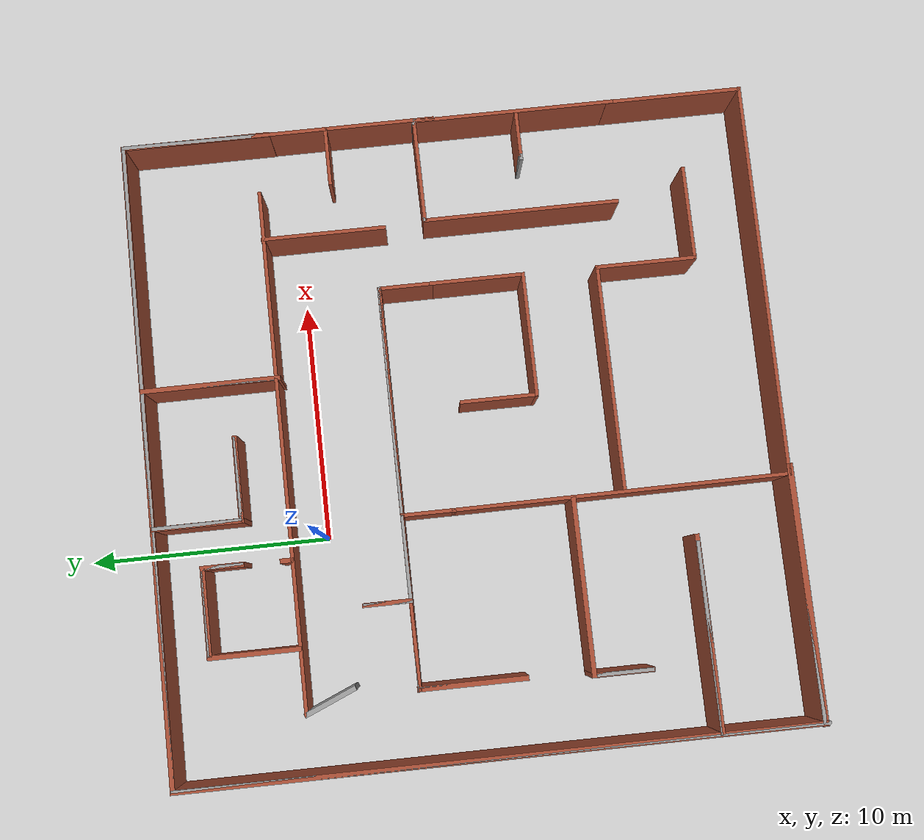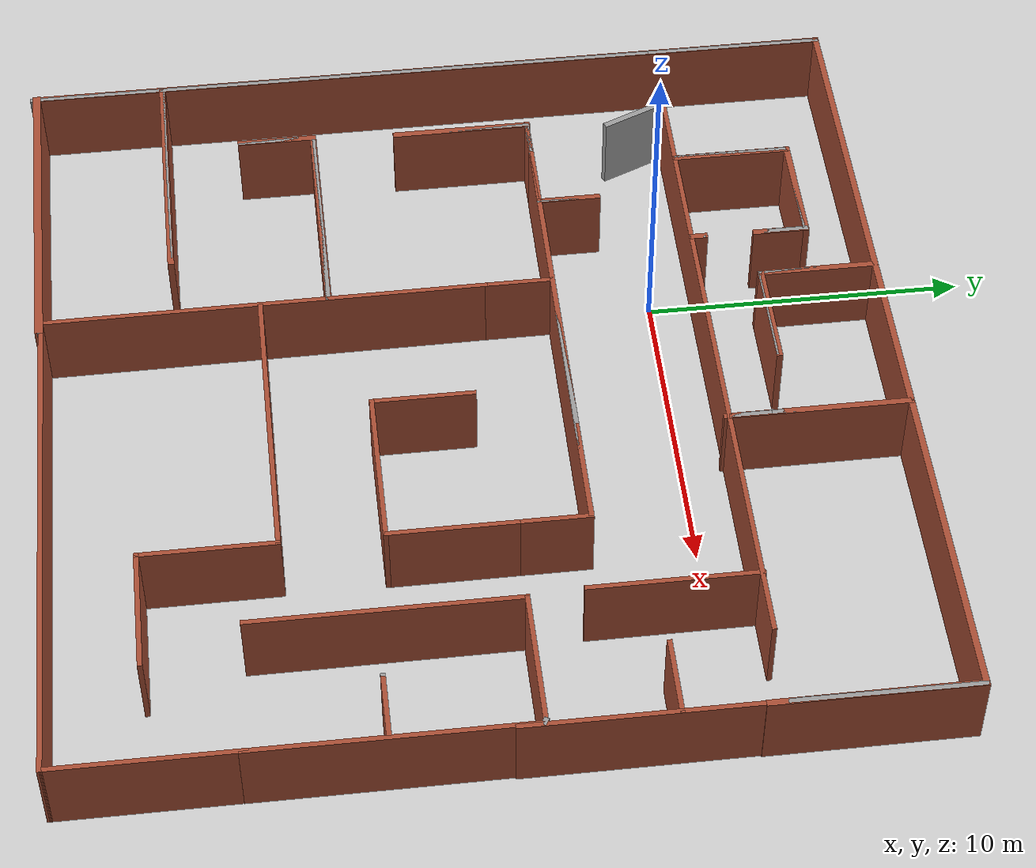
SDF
<sdf version="1.6">
 <world name="default">
  <light name="sun" type="directional">
   <pose>0 0 10 0 -0 0</pose>
   <diffuse>0.8 0.8 0.8 1</diffuse>
   <specular>0.1 0.1 0.1 1</specular>
   <attenuation>
    <range>1000</range>
    <constant>0.9</constant>
    <linear>0.01</linear>
    <quadratic>0.001</quadratic>
   </attenuation>
   <direction>-0.5 0.5 -1</direction>
  </light>
  <model name="ground_plane">
   <static>1</static>
   <link name="link">
    <collision name="collision">
     <geometry><plane><normal>0 0 1</normal><size>100 100</size></plane></geometry>
     <surface><friction><ode><mu>100</mu><mu2>50</mu2></ode></friction></surface>
    </collision>
    <visual name="visual">
     <cast_shadows>0</cast_shadows>
     <geometry><plane><normal>0 0 1</normal><size>100 100</size></plane></geometry>
     <material>
      <script><uri>file://media/materials/scripts/gazebo.material</uri><name>Gazebo/Grey</name></script>
     </material>
    </visual>
   </link>
  </model>
  <physics name="default_physics" default="0" type="ode">
   <max_step_size>0.01</max_step_size>
   <real_time_factor>1</real_time_factor>
   <real_time_update_rate>100</real_time_update_rate>
  </physics>
  <gravity>0 0 -9.8</gravity>
  <magnetic_field>6e-06 2.3e-05 -4.2e-05</magnetic_field>
  <atmosphere type="adiabatic"/>
  <scene><ambient>0.4 0.4 0.4 1</ambient><background>0.7 0.7 0.7 1</background><shadows>1</shadows></scene>
  <spherical_coordinates>
   <surface_model>EARTH_WGS84</surface_model>
   <latitude_deg>0</latitude_deg>
   <longitude_deg>0</longitude_deg>
   <elevation>0</elevation>
   <heading_deg>0</heading_deg>
  </spherical_coordinates>
  <model name="room">
   <pose>7.08386 -10.3078 0 0 -0 0</pose>
   <link name="Wall_0">
    <collision name="Wall_0_Collision">
     <geometry><box><size>2 0.15 2.5</size></box></geometry>
     <pose>0 0 1.25 0 -0 0</pose>
    </collision>
    <visual name="Wall_0_Visual">
     <pose>0 0 1.25 0 -0 0</pose>
     <geometry><box><size>2 0.15 2.5</size></box></geometry>
     <material>
      <script><uri>file://media/materials/scripts/gazebo.material</uri><name>Gazebo/Grey</name></script>
      <ambient>1 1 1 1</ambient>
     </material>
    </visual>
    <pose>-10.0239 8.02281 0 0 -0 1.5708</pose>
   </link>
   <link name="Wall_10">
    <collision name="Wall_10_Collision">
     <geometry><box><size>9.5 0.15 2.5</size></box></geometry>
     <pose>0 0 1.25 0 -0 0</pose>
    </collision>
    <visual name="Wall_10_Visual">
     <pose>0 0 1.25 0 -0 0</pose>
     <geometry><box><size>9.5 0.15 2.5</size></box></geometry>
     <material>
      <script><uri>file://media/materials/scripts/gazebo.material</uri><name>Gazebo/Bricks</name></script>
      <ambient>1 1 1 1</ambient>
     </material>
    </visual>
    <pose>-1.77421 -2.03731 0 0 -0 0</pose>
   </link>
   <link name="Wall_12">
    <collision name="Wall_12_Collision">
     <geometry><box><size>8.25 0.15 2.5</size></box></geometry>
     <pose>0 0 1.25 0 -0 0</pose>
    </collision>
    <visual name="Wall_12_Visual">
     <pose>0 0 1.25 0 -0 0</pose>
     <geometry><box><size>8.25 0.15 2.5</size></box></geometry>
     <material>
      <script><uri>file://media/materials/scripts/gazebo.material</uri><name>Gazebo/Bricks</name></script>
      <ambient>1 1 1 1</ambient>
     </material>
    </visual>
    <pose>5.64723 0.848622 0 0 -0 1.5708</pose>
   </link>
   <link name="Wall_13">
    <collision name="Wall_13_Collision">
     <geometry><box><size>0.15 0.15 2.5</size></box></geometry>
     <pose>0 0 1.25 0 -0 0</pose>
    </collision>
    <visual name="Wall_13_Visual">
     <pose>0 0 1.25 0 -0 0</pose>
     <geometry><box><size>0.15 0.15 2.5</size></box></geometry>
     <material>
      <script><uri>file://media/materials/scripts/gazebo.material</uri><name>Gazebo/Grey</name></script>
      <ambient>1 1 1 1</ambient>
     </material>
    </visual>
    <pose>5.69376 4.89862 0 0 -0 0</pose>
   </link>
   <link name="Wall_14">
    <collision name="Wall_14_Collision">
     <geometry><box><size>0.15 0.15 2.5</size></box></geometry>
     <pose>0 0 1.25 0 -0 0</pose>
    </collision>
    <visual name="Wall_14_Visual">
     <pose>0 0 1.25 0 -0 0</pose>
     <geometry><box><size>0.15 0.15 2.5</size></box></geometry>
     <material>
      <script><uri>file://media/materials/scripts/gazebo.material</uri><name>Gazebo/Grey</name></script>
      <ambient>1 1 1 1</ambient>
     </material>
    </visual>
    <pose>5.69376 4.89862 0 0 -0 0</pose>
   </link>
   <link name="Wall_2">
    <collision name="Wall_2_Collision">
     <geometry><box><size>9.5 0.15 2.5</size></box></geometry>
     <pose>0 0 1.25 0 -0 0</pose>
    </collision>
    <visual name="Wall_2_Visual">
     <pose>0 0 1.25 0 -0 0</pose>
     <geometry><box><size>9.5 0.15 2.5</size></box></geometry>
     <material>
      <script><uri>file://media/materials/scripts/gazebo.material</uri><name>Gazebo/Grey</name></script>
      <ambient>1 1 1 1</ambient>
     </material>
    </visual>
    <pose>-5.34886 7.09781 0 0 -0 0</pose>
   </link>
   <link name="Wall_21">
    <collision name="Wall_21_Collision">
     <geometry><box><size>4 0.15 2.5</size></box></geometry>
     <pose>0 0 1.25 0 -0 0</pose>
    </collision>
    <visual name="Wall_21_Visual">
     <pose>0 0 1.25 0 -0 0</pose>
     <geometry><box><size>4 0.15 2.5</size></box></geometry>
     <material>
      <script><uri>file://media/materials/scripts/gazebo.material</uri><name>Gazebo/Bricks</name></script>
      <ambient>1 1 1 1</ambient>
     </material>
    </visual>
    <pose>2.92614 3.00206 0 0 0 -1.5708</pose>
   </link>
   <link name="Wall_25">
    <collision name="Wall_25_Collision">
     <geometry><box><size>16.6274 0.15 2.5</size></box></geometry>
     <pose>0 0 1.25 0 -0 0</pose>
    </collision>
    <visual name="Wall_25_Visual">
     <pose>0 0 1.25 0 -0 0</pose>
     <geometry><box><size>16.6274 0.15 2.5</size></box></geometry>
     <material>
      <script><uri>file://media/materials/scripts/gazebo.material</uri><name>Gazebo/Bricks</name></script>
      <ambient>1 1 1 1</ambient>
     </material>
    </visual>
    <pose>1.751 -8.87642 0 0 0 -0.008588</pose>
   </link>
   <link name="Wall_26">
    <collision name="Wall_26_Collision">
     <geometry><box><size>5.68458 0.15 2.5</size></box></geometry>
     <pose>0 0 1.25 0 -0 0</pose>
    </collision>
    <visual name="Wall_26_Visual">
     <pose>0 0 1.25 0 -0 0</pose>
     <geometry><box><size>5.68458 0.15 2.5</size></box></geometry>
     <material>
      <script><uri>file://media/materials/scripts/gazebo.material</uri><name>Gazebo/Bricks</name></script>
      <ambient>1 1 1 1</ambient>
     </material>
    </visual>
    <pose>9.98971 -6.10913 0 0 -0 1.5708</pose>
   </link>
   <link name="Wall_3">
    <collision name="Wall_3_Collision">
     <geometry><box><size>3.75 0.15 2.5</size></box></geometry>
     <pose>0 0 1.25 0 -0 0</pose>
    </collision>
    <visual name="Wall_3_Visual">
     <pose>0 0 1.25 0 -0 0</pose>
     <geometry><box><size>3.75 0.15 2.5</size></box></geometry>
     <material>
      <script><uri>file://media/materials/scripts/gazebo.material</uri><name>Gazebo/Grey</name></script>
      <ambient>1 1 1 1</ambient>
     </material>
    </visual>
    <pose>1.12614 7.09781 0 0 -0 0</pose>
   </link>
   <link name="Wall_35">
    <collision name="Wall_35_Collision">
     <geometry><box><size>4.25 0.15 2.5</size></box></geometry>
     <pose>0 0 1.25 0 -0 0</pose>
    </collision>
    <visual name="Wall_35_Visual">
     <pose>0 0 1.25 0 -0 0</pose>
     <geometry><box><size>4.25 0.15 2.5</size></box></geometry>
     <material>
      <script><uri>file://media/materials/scripts/gazebo.material</uri><name>Gazebo/Bricks</name></script>
      <ambient>1 1 1 1</ambient>
     </material>
    </visual>
    <pose>2.90079 -4.08731 0 0 0 -1.5708</pose>
   </link>
   <link name="Wall_36">
    <collision name="Wall_36_Collision">
     <geometry><box><size>4 0.15 2.5</size></box></geometry>
     <pose>0 0 1.25 0 -0 0</pose>
    </collision>
    <visual name="Wall_36_Visual">
     <pose>0 0 1.25 0 -0 0</pose>
     <geometry><box><size>4 0.15 2.5</size></box></geometry>
     <material>
      <script><uri>file://media/materials/scripts/gazebo.material</uri><name>Gazebo/Bricks</name></script>
      <ambient>1 1 1 1</ambient>
     </material>
    </visual>
    <pose>4.82579 -6.13731 0 0 -0 0</pose>
   </link>
   <link name="Wall_40">
    <collision name="Wall_40_Collision">
     <geometry><box><size>4.36611 0.15 2.5</size></box></geometry>
     <pose>0 0 1.25 0 -0 0</pose>
    </collision>
    <visual name="Wall_40_Visual">
     <pose>0 0 1.25 0 -0 0</pose>
     <geometry><box><size>4.36611 0.15 2.5</size></box></geometry>
     <material>
      <script><uri>file://media/materials/scripts/gazebo.material</uri><name>Gazebo/Bricks</name></script>
      <ambient>1 1 1 1</ambient>
     </material>
    </visual>
    <pose>7.80178 4.90977 0 0 -0 0.005287</pose>
   </link>
   <link name="Wall_41">
    <collision name="Wall_41_Collision">
     <geometry><box><size>0.25 0.15 2.5</size></box></geometry>
     <pose>0 0 1.25 0 -0 0</pose>
    </collision>
    <visual name="Wall_41_Visual">
     <pose>0 0 1.25 0 -0 0</pose>
     <geometry><box><size>0.25 0.15 2.5</size></box></geometry>
     <material>
      <script><uri>file://media/materials/scripts/gazebo.material</uri><name>Gazebo/Grey</name></script>
      <ambient>1 1 1 1</ambient>
     </material>
    </visual>
    <pose>9.9531 4.89591 0 0 0 -0.523599</pose>
   </link>
   <link name="Wall_42">
    <collision name="Wall_42_Collision">
     <geometry><box><size>8.5 0.15 2.5</size></box></geometry>
     <pose>0 0 1.25 0 -0 0</pose>
    </collision>
    <visual name="Wall_42_Visual">
     <pose>0 0 1.25 0 -0 0</pose>
     <geometry><box><size>8.5 0.15 2.5</size></box></geometry>
     <material>
      <script><uri>file://media/materials/scripts/gazebo.material</uri><name>Gazebo/Bricks</name></script>
      <ambient>1 1 1 1</ambient>
     </material>
    </visual>
    <pose>9.9964 0.695912 0 0 0 -1.5708</pose>
   </link>
   <link name="Wall_44">
    <collision name="Wall_44_Collision">
     <geometry><box><size>0.25 0.15 2.5</size></box></geometry>
     <pose>0 0 1.25 0 -0 0</pose>
    </collision>
    <visual name="Wall_44_Visual">
     <pose>0 0 1.25 0 -0 0</pose>
     <geometry><box><size>0.25 0.15 2.5</size></box></geometry>
     <material>
      <script><uri>file://media/materials/scripts/gazebo.material</uri><name>Gazebo/Grey</name></script>
      <ambient>1 1 1 1</ambient>
     </material>
    </visual>
    <pose>7.97316 0.584786 0 0 -0 0</pose>
   </link>
   <link name="Wall_45">
    <collision name="Wall_45_Collision">
     <geometry><box><size>2 0.15 2.5</size></box></geometry>
     <pose>0 0 1.25 0 -0 0</pose>
    </collision>
    <visual name="Wall_45_Visual">
     <pose>0 0 1.25 0 -0 0</pose>
     <geometry><box><size>2 0.15 2.5</size></box></geometry>
     <material>
      <script><uri>file://media/materials/scripts/gazebo.material</uri><name>Gazebo/Bricks</name></script>
      <ambient>1 1 1 1</ambient>
     </material>
    </visual>
    <pose>8.94816 0.584786 0 0 -0 0</pose>
   </link>
   <link name="Wall_47">
    <collision name="Wall_47_Collision">
     <geometry><box><size>2.25 0.15 2.5</size></box></geometry>
     <pose>0 0 1.25 0 -0 0</pose>
    </collision>
    <visual name="Wall_47_Visual">
     <pose>0 0 1.25 0 -0 0</pose>
     <geometry><box><size>2.25 0.15 2.5</size></box></geometry>
     <material>
      <script><uri>file://media/materials/scripts/gazebo.material</uri><name>Gazebo/Bricks</name></script>
      <ambient>1 1 1 1</ambient>
     </material>
    </visual>
    <pose>-6.55846 6.02358 0 0 -0 1.5708</pose>
   </link>
   <link name="Wall_49">
    <collision name="Wall_49_Collision">
     <geometry><box><size>5.25 0.15 2.5</size></box></geometry>
     <pose>0 0 1.25 0 -0 0</pose>
    </collision>
    <visual name="Wall_49_Visual">
     <pose>0 0 1.25 0 -0 0</pose>
     <geometry><box><size>5.25 0.15 2.5</size></box></geometry>
     <material>
      <script><uri>file://media/materials/scripts/gazebo.material</uri><name>Gazebo/Bricks</name></script>
      <ambient>1 1 1 1</ambient>
     </material>
    </visual>
    <pose>0.376144 1.07706 0 0 -0 3.14159</pose>
   </link>
   <link name="Wall_5">
    <collision name="Wall_5_Collision">
     <geometry><box><size>2.32076 0.15 2.5</size></box></geometry>
     <pose>0 0 1.25 0 -0 0</pose>
    </collision>
    <visual name="Wall_5_Visual">
     <pose>0 0 1.25 0 -0 0</pose>
     <geometry><box><size>2.32076 0.15 2.5</size></box></geometry>
     <material>
      <script><uri>file://media/materials/scripts/gazebo.material</uri><name>Gazebo/Bricks</name></script>
      <ambient>1 1 1 1</ambient>
     </material>
    </visual>
    <pose>2.92614 6.01244 0 0 0 -1.5708</pose>
   </link>
   <link name="Wall_50">
    <collision name="Wall_50_Collision">
     <geometry><box><size>3.25 0.15 2.5</size></box></geometry>
     <pose>0 0 1.25 0 -0 0</pose>
    </collision>
    <visual name="Wall_50_Visual">
     <pose>0 0 1.25 0 -0 0</pose>
     <geometry><box><size>3.25 0.15 2.5</size></box></geometry>
     <material>
      <script><uri>file://media/materials/scripts/gazebo.material</uri><name>Gazebo/Bricks</name></script>
      <ambient>1 1 1 1</ambient>
     </material>
    </visual>
    <pose>-2.17386 2.62706 0 0 -0 1.5708</pose>
   </link>
   <link name="Wall_7">
    <collision name="Wall_7_Collision">
     <geometry><box><size>13.9294 0.15 2.5</size></box></geometry>
     <pose>0 0 1.25 0 -0 0</pose>
    </collision>
    <visual name="Wall_7_Visual">
     <pose>0 0 1.25 0 -0 0</pose>
     <geometry><box><size>13.9294 0.15 2.5</size></box></geometry>
     <material>
      <script><uri>file://media/materials/scripts/gazebo.material</uri><name>Gazebo/Bricks</name></script>
      <ambient>1 1 1 1</ambient>
     </material>
    </visual>
    <pose>-6.52308 -1.91604 0 0 0 -1.56566</pose>
   </link>
   <static>1</static>
  </model>
  <model name="map">
   <pose>3.84051 -6.17481 0 0 -0 0</pose>
   <link name="Door_0">
    <collision name="Door_0_Collision">
     <geometry><box><size>2.30748 0.2 2.5</size></box></geometry>
     <pose>0 0 1.25 0 -0 0</pose>
    </collision>
    <visual name="Door_0_Visual">
     <pose>0 0 1.25 0 -0 0</pose>
     <geometry><box><size>2.30748 0.2 2.5</size></box></geometry>
     <material>
      <script><uri>file://media/materials/scripts/gazebo.material</uri><name>Gazebo/Grey</name></script>
     </material>
    </visual>
    <pose>-10.424 6.56396 0 0 0 -1.17272</pose>
   </link>
   <link name="Wall_120">
    <collision name="Wall_120_Collision">
     <geometry><box><size>15.246 0.16 2.5</size></box></geometry>
     <pose>0 0 1.25 0 -0 0</pose>
    </collision>
    <visual name="Wall_120_Visual">
     <pose>0 0 1.25 0 -0 0</pose>
     <geometry><box><size>15.246 0.16 2.5</size></box></geometry>
     <material>
      <script><uri>file://media/materials/scripts/gazebo.material</uri><name>Gazebo/Bricks</name></script>
      <ambient>1 1 1 1</ambient>
     </material>
    </visual>
    <pose>-1.41851 2.96181 0 0 -0 3.14159</pose>
   </link>
   <link name="Wall_122">
    <collision name="Wall_122_Collision">
     <geometry><box><size>21.75 0.15 2.5</size></box></geometry>
     <pose>0 0 1.25 0 -0 0</pose>
    </collision>
    <visual name="Wall_122_Visual">
     <pose>0 0 1.25 0 -0 0</pose>
     <geometry><box><size>21.75 0.15 2.5</size></box></geometry>
     <material>
      <script><uri>file://media/materials/scripts/gazebo.material</uri><name>Gazebo/Bricks</name></script>
      <ambient>1 1 1 1</ambient>
     </material>
    </visual>
    <pose>-0.050646 7.55977 0 0 -0 0</pose>
   </link>
   <link name="Wall_124">
    <collision name="Wall_124_Collision">
     <geometry><box><size>7.75 0.15 2.5</size></box></geometry>
     <pose>0 0 1.25 0 -0 0</pose>
    </collision>
    <visual name="Wall_124_Visual">
     <pose>0 0 1.25 0 -0 0</pose>
     <geometry><box><size>7.75 0.15 2.5</size></box></geometry>
     <material>
      <script><uri>file://media/materials/scripts/gazebo.material</uri><name>Gazebo/Bricks</name></script>
      <ambient>1 1 1 1</ambient>
     </material>
    </visual>
    <pose>13.2844 3.8017 0 0 -0 1.5708</pose>
   </link>
   <link name="Wall_126">
    <collision name="Wall_126_Collision">
     <geometry><box><size>5.25 0.15 2.5</size></box></geometry>
     <pose>0 0 1.25 0 -0 0</pose>
    </collision>
    <visual name="Wall_126_Visual">
     <pose>0 0 1.25 0 -0 0</pose>
     <geometry><box><size>5.25 0.15 2.5</size></box></geometry>
     <material>
      <script><uri>file://media/materials/scripts/gazebo.material</uri><name>Gazebo/Bricks</name></script>
      <ambient>1 1 1 1</ambient>
     </material>
    </visual>
    <pose>8.76925 5.04525 0 0 -0 1.5708</pose>
   </link>
   <link name="Wall_128">
    <collision name="Wall_128_Collision">
     <geometry><box><size>2.5 0.15 2.5</size></box></geometry>
     <pose>0 0 1.25 0 -0 0</pose>
    </collision>
    <visual name="Wall_128_Visual">
     <pose>0 0 1.25 0 -0 0</pose>
     <geometry><box><size>2.5 0.15 2.5</size></box></geometry>
     <material>
      <script><uri>file://media/materials/scripts/gazebo.material</uri><name>Gazebo/Bricks</name></script>
      <ambient>1 1 1 1</ambient>
     </material>
    </visual>
    <pose>12.0979 4.55917 0 0 -0 0</pose>
   </link>
   <link name="Wall_130">
    <collision name="Wall_130_Collision">
     <geometry><box><size>2.03 0.18 2.5</size></box></geometry>
     <pose>0 0 1.25 0 -0 0</pose>
    </collision>
    <visual name="Wall_130_Visual">
     <pose>0 0 1.25 0 -0 0</pose>
     <geometry><box><size>2.03 0.18 2.5</size></box></geometry>
     <material>
      <script><uri>file://media/materials/scripts/gazebo.material</uri><name>Gazebo/Bricks</name></script>
      <ambient>1 1 1 1</ambient>
     </material>
    </visual>
    <pose>-6.76964 3.91081 0 0 -0 1.5708</pose>
   </link>
   <link name="Wall_132">
    <collision name="Wall_132_Collision">
     <geometry><box><size>5.78024 0.15 2.5</size></box></geometry>
     <pose>0 0 1.25 0 -0 0</pose>
    </collision>
    <visual name="Wall_132_Visual">
     <pose>0 0 1.25 0 -0 0</pose>
     <geometry><box><size>5.78024 0.15 2.5</size></box></geometry>
     <material>
      <script><uri>file://media/materials/scripts/gazebo.material</uri><name>Gazebo/Grey</name></script>
      <ambient>1 1 1 1</ambient>
     </material>
    </visual>
    <pose>-13.2886 10.2883 0 0 -0 1.56947</pose>
   </link>
   <link name="Wall_133">
    <collision name="Wall_133_Collision">
     <geometry><box><size>26.75 0.15 2.5</size></box></geometry>
     <pose>0 0 1.25 0 -0 0</pose>
    </collision>
    <visual name="Wall_133_Visual">
     <pose>0 0 1.25 0 -0 0</pose>
     <geometry><box><size>26.75 0.15 2.5</size></box></geometry>
     <material>
      <script><uri>file://media/materials/scripts/gazebo.material</uri><name>Gazebo/Grey</name></script>
      <ambient>1 1 1 1</ambient>
     </material>
    </visual>
    <pose>-0.015503 13.1034 0 0 -0 0</pose>
   </link>
   <link name="Wall_134">
    <collision name="Wall_134_Collision">
     <geometry><box><size>5.65177 0.15 2.5</size></box></geometry>
     <pose>0 0 1.25 0 -0 0</pose>
    </collision>
    <visual name="Wall_134_Visual">
     <pose>0 0 1.25 0 -0 0</pose>
     <geometry><box><size>5.65177 0.15 2.5</size></box></geometry>
     <material>
      <script><uri>file://media/materials/scripts/gazebo.material</uri><name>Gazebo/Grey</name></script>
      <ambient>1 1 1 1</ambient>
     </material>
    </visual>
    <pose>13.2997 10.3525 0 0 0 -1.57638</pose>
   </link>
   <link name="Wall_136">
    <collision name="Wall_136_Collision">
     <geometry><box><size>3.73604 0.15 2.5</size></box></geometry>
     <pose>0 0 1.25 0 -0 0</pose>
    </collision>
    <visual name="Wall_136_Visual">
     <pose>0 0 1.25 0 -0 0</pose>
     <geometry><box><size>3.73604 0.15 2.5</size></box></geometry>
     <material>
      <script><uri>file://media/materials/scripts/gazebo.material</uri><name>Gazebo/Grey</name></script>
      <ambient>1 1 1 1</ambient>
     </material>
    </visual>
    <pose>-8.22677 9.42794 0 0 -0 1.5708</pose>
   </link>
   <link name="Wall_137">
    <collision name="Wall_137_Collision">
     <geometry><box><size>3.75 0.15 2.5</size></box></geometry>
     <pose>0 0 1.25 0 -0 0</pose>
    </collision>
    <visual name="Wall_137_Visual">
     <pose>0 0 1.25 0 -0 0</pose>
     <geometry><box><size>3.75 0.15 2.5</size></box></geometry>
     <material>
      <script><uri>file://media/materials/scripts/gazebo.material</uri><name>Gazebo/Grey</name></script>
      <ambient>1 1 1 1</ambient>
     </material>
    </visual>
    <pose>-6.4499 11.2208 0 0 -0 0</pose>
   </link>
   <link name="Wall_138">
    <collision name="Wall_138_Collision">
     <geometry><box><size>1.75 0.15 2.5</size></box></geometry>
     <pose>0 0 1.25 0 -0 0</pose>
    </collision>
    <visual name="Wall_138_Visual">
     <pose>0 0 1.25 0 -0 0</pose>
     <geometry><box><size>1.75 0.15 2.5</size></box></geometry>
     <material>
      <script><uri>file://media/materials/scripts/gazebo.material</uri><name>Gazebo/Grey</name></script>
      <ambient>1 1 1 1</ambient>
     </material>
    </visual>
    <pose>-4.62677 10.4208 0 0 0 -1.5708</pose>
   </link>
   <link name="Wall_140">
    <collision name="Wall_140_Collision">
     <geometry><box><size>3.75 0.15 2.5</size></box></geometry>
     <pose>0 0 1.25 0 -0 0</pose>
    </collision>
    <visual name="Wall_140_Visual">
     <pose>0 0 1.25 0 -0 0</pose>
     <geometry><box><size>3.75 0.15 2.5</size></box></geometry>
     <material>
      <script><uri>file://media/materials/scripts/gazebo.material</uri><name>Gazebo/Grey</name></script>
      <ambient>1 1 1 1</ambient>
     </material>
    </visual>
    <pose>-2.82687 11.273 0 0 0 -1.5708</pose>
   </link>
   <link name="Wall_142">
    <collision name="Wall_142_Collision">
     <geometry><box><size>0.5 0.15 2.5</size></box></geometry>
     <pose>0 0 1.25 0 -0 0</pose>
    </collision>
    <visual name="Wall_142_Visual">
     <pose>0 0 1.25 0 -0 0</pose>
     <geometry><box><size>0.5 0.15 2.5</size></box></geometry>
     <material>
      <script><uri>file://media/materials/scripts/gazebo.material</uri><name>Gazebo/Grey</name></script>
      <ambient>1 1 1 1</ambient>
     </material>
    </visual>
    <pose>-4.64152 7.76381 0 0 -0 1.5708</pose>
   </link>
   <link name="Wall_144">
    <collision name="Wall_144_Collision">
     <geometry><box><size>3.5 0.15 2.5</size></box></geometry>
     <pose>0 0 1.25 0 -0 0</pose>
    </collision>
    <visual name="Wall_144_Visual">
     <pose>0 0 1.25 0 -0 0</pose>
     <geometry><box><size>3.5 0.15 2.5</size></box></geometry>
     <material>
      <script><uri>file://media/materials/scripts/gazebo.material</uri><name>Gazebo/Grey</name></script>
      <ambient>1 1 1 1</ambient>
     </material>
    </visual>
    <pose>-1.15187 9.47296 0 0 -0 0</pose>
   </link>
   <link name="Wall_146">
    <collision name="Wall_146_Collision">
     <geometry><box><size>4.5 0.15 2.5</size></box></geometry>
     <pose>0 0 1.25 0 -0 0</pose>
    </collision>
    <visual name="Wall_146_Visual">
     <pose>0 0 1.25 0 -0 0</pose>
     <geometry><box><size>4.5 0.15 2.5</size></box></geometry>
     <material>
      <script><uri>file://media/materials/scripts/gazebo.material</uri><name>Gazebo/Grey</name></script>
      <ambient>1 1 1 1</ambient>
     </material>
    </visual>
    <pose>2.85279 10.9518 0 0 0 -1.5708</pose>
   </link>
   <link name="Wall_148">
    <collision name="Wall_148_Collision">
     <geometry><box><size>1.25 0.15 2.5</size></box></geometry>
     <pose>0 0 1.25 0 -0 0</pose>
    </collision>
    <visual name="Wall_148_Visual">
     <pose>0 0 1.25 0 -0 0</pose>
     <geometry><box><size>1.25 0.15 2.5</size></box></geometry>
     <material>
      <script><uri>file://media/materials/scripts/gazebo.material</uri><name>Gazebo/Grey</name></script>
      <ambient>1 1 1 1</ambient>
     </material>
    </visual>
    <pose>2.85279 8.22684 0 0 0 -1.5708</pose>
   </link>
   <link name="Wall_150">
    <collision name="Wall_150_Collision">
     <geometry><box><size>20.75 0.15 2.5</size></box></geometry>
     <pose>0 0 1.25 0 -0 0</pose>
    </collision>
    <visual name="Wall_150_Visual">
     <pose>0 0 1.25 0 -0 0</pose>
     <geometry><box><size>20.75 0.15 2.5</size></box></geometry>
     <material>
      <script><uri>file://media/materials/scripts/gazebo.material</uri><name>Gazebo/Grey</name></script>
      <ambient>1 1 1 1</ambient>
     </material>
    </visual>
    <pose>-13.2924 -2.82684 0 0 0 -1.5708</pose>
   </link>
   <link name="Wall_153">
    <collision name="Wall_153_Collision">
     <geometry><box><size>10.5 0.15 2.5</size></box></geometry>
     <pose>0 0 1.25 0 -0 0</pose>
    </collision>
    <visual name="Wall_153_Visual">
     <pose>0 0 1.25 0 -0 0</pose>
     <geometry><box><size>10.5 0.15 2.5</size></box></geometry>
     <material>
      <script><uri>file://media/materials/scripts/gazebo.material</uri><name>Gazebo/Grey</name></script>
      <ambient>1 1 1 1</ambient>
     </material>
    </visual>
    <pose>-8.06798 -12.962 0 0 -0 0</pose>
   </link>
   <link name="Wall_155">
    <collision name="Wall_155_Collision">
     <geometry><box><size>1.5 0.15 2.5</size></box></geometry>
     <pose>0 0 1.25 0 -0 0</pose>
    </collision>
    <visual name="Wall_155_Visual">
     <pose>0 0 1.25 0 -0 0</pose>
     <geometry><box><size>1.5 0.15 2.5</size></box></geometry>
     <material>
      <script><uri>file://media/materials/scripts/gazebo.material</uri><name>Gazebo/Grey</name></script>
      <ambient>1 1 1 1</ambient>
     </material>
    </visual>
    <pose>-9.63651 2.96181 0 0 -0 3.14159</pose>
   </link>
   <link name="Wall_156">
    <collision name="Wall_156_Collision">
     <geometry><box><size>4.25 0.15 2.5</size></box></geometry>
     <pose>0 0 1.25 0 -0 0</pose>
    </collision>
    <visual name="Wall_156_Visual">
     <pose>0 0 1.25 0 -0 0</pose>
     <geometry><box><size>4.25 0.15 2.5</size></box></geometry>
     <material>
      <script><uri>file://media/materials/scripts/gazebo.material</uri><name>Gazebo/Grey</name></script>
      <ambient>1 1 1 1</ambient>
     </material>
    </visual>
    <pose>-10.3115 0.911811 0 0 0 -1.5708</pose>
   </link>
   <link name="Wall_158">
    <collision name="Wall_158_Collision">
     <geometry><box><size>2.5 0.15 2.5</size></box></geometry>
     <pose>0 0 1.25 0 -0 0</pose>
    </collision>
    <visual name="Wall_158_Visual">
     <pose>0 0 1.25 0 -0 0</pose>
     <geometry><box><size>2.5 0.15 2.5</size></box></geometry>
     <material>
      <script><uri>file://media/materials/scripts/gazebo.material</uri><name>Gazebo/Grey</name></script>
      <ambient>1 1 1 1</ambient>
     </material>
    </visual>
    <pose>-10.4834 -5.22157 0 0 0 -1.5708</pose>
   </link>
   <link name="Wall_160">
    <collision name="Wall_160_Collision">
     <geometry><box><size>7.25 0.15 2.5</size></box></geometry>
     <pose>0 0 1.25 0 -0 0</pose>
    </collision>
    <visual name="Wall_160_Visual">
     <pose>0 0 1.25 0 -0 0</pose>
     <geometry><box><size>7.25 0.15 2.5</size></box></geometry>
     <material>
      <script><uri>file://media/materials/scripts/gazebo.material</uri><name>Gazebo/Grey</name></script>
      <ambient>1 1 1 1</ambient>
     </material>
    </visual>
    <pose>-6.86269 -4.04657 0 0 -0 0</pose>
   </link>
   <link name="Wall_162">
    <collision name="Wall_162_Collision">
     <geometry><box><size>7.75 0.15 2.5</size></box></geometry>
     <pose>0 0 1.25 0 -0 0</pose>
    </collision>
    <visual name="Wall_162_Visual">
     <pose>0 0 1.25 0 -0 0</pose>
     <geometry><box><size>7.75 0.15 2.5</size></box></geometry>
     <material>
      <script><uri>file://media/materials/scripts/gazebo.material</uri><name>Gazebo/Grey</name></script>
      <ambient>1 1 1 1</ambient>
     </material>
    </visual>
    <pose>-9.44298 -8.85805 0 0 -0 0</pose>
   </link>
   <static>1</static>
  </model>
  <model name="Untitled">
   <pose>3.8205 -6.13143 0 0 -0 0</pose>
   <link name="Wall_164">
    <collision name="Wall_164_Collision">
     <geometry><box><size>26.2977 0.2 2.5</size></box></geometry>
     <pose>0 0 1.25 0 -0 0</pose>
    </collision>
    <visual name="Wall_164_Visual">
     <pose>0 0 1.25 0 -0 0</pose>
     <geometry><box><size>26.2977 0.2 2.5</size></box></geometry>
     <material>
      <script><uri>file://media/materials/scripts/gazebo.material</uri><name>Gazebo/Bricks</name></script>
      <ambient>1 1 1 1</ambient>
     </material>
    </visual>
    <pose>-13.2827 0.012291 0 0 -0 1.57043</pose>
   </link>
   <link name="Wall_166">
    <collision name="Wall_166_Collision">
     <geometry><box><size>26.75 0.2 2.5</size></box></geometry>
     <pose>0 0 1.25 0 -0 0</pose>
    </collision>
    <visual name="Wall_166_Visual">
     <pose>0 0 1.25 0 -0 0</pose>
     <geometry><box><size>26.75 0.2 2.5</size></box></geometry>
     <material>
      <script><uri>file://media/materials/scripts/gazebo.material</uri><name>Gazebo/Bricks</name></script>
      <ambient>1 1 1 1</ambient>
     </material>
    </visual>
    <pose>0.037499 13.0613 0 0 -0 1e-05</pose>
   </link>
   <link name="Wall_168">
    <collision name="Wall_168_Collision">
     <geometry><box><size>6.30028 0.2 2.5</size></box></geometry>
     <pose>0 0 1.25 0 -0 0</pose>
    </collision>
    <visual name="Wall_168_Visual">
     <pose>0 0 1.25 0 -0 0</pose>
     <geometry><box><size>6.30028 0.2 2.5</size></box></geometry>
     <material>
      <script><uri>file://media/materials/scripts/gazebo.material</uri><name>Gazebo/Bricks</name></script>
      <ambient>1 1 1 1</ambient>
     </material>
    </visual>
    <pose>13.3125 10.0114 0 0 0 -1.5708</pose>
   </link>
   <link name="Wall_170">
    <collision name="Wall_170_Collision">
     <geometry><box><size>5.8 0.2 2.5</size></box></geometry>
     <pose>0 0 1.25 0 -0 0</pose>
    </collision>
    <visual name="Wall_170_Visual">
     <pose>0 0 1.25 0 -0 0</pose>
     <geometry><box><size>5.8 0.2 2.5</size></box></geometry>
     <material>
      <script><uri>file://media/materials/scripts/gazebo.material</uri><name>Gazebo/Bricks</name></script>
      <ambient>1 1 1 1</ambient>
     </material>
    </visual>
    <pose>2.88004 10.2379 0 0 0 -1.5708</pose>
   </link>
   <link name="Wall_172">
    <collision name="Wall_172_Collision">
     <geometry><box><size>3.80026 0.2 2.5</size></box></geometry>
     <pose>0 0 1.25 0 -0 0</pose>
    </collision>
    <visual name="Wall_172_Visual">
     <pose>0 0 1.25 0 -0 0</pose>
     <geometry><box><size>3.80026 0.2 2.5</size></box></geometry>
     <material>
      <script><uri>file://media/materials/scripts/gazebo.material</uri><name>Gazebo/Bricks</name></script>
      <ambient>1 1 1 1</ambient>
     </material>
    </visual>
    <pose>-2.8245 11.2384 0 0 0 -1.5708</pose>
   </link>
   <link name="Wall_173">
    <collision name="Wall_173_Collision">
     <geometry><box><size>3.59092 0.2 2.5</size></box></geometry>
     <pose>0 0 1.25 0 -0 0</pose>
    </collision>
    <visual name="Wall_173_Visual">
     <pose>0 0 1.25 0 -0 0</pose>
     <geometry><box><size>3.59092 0.2 2.5</size></box></geometry>
     <material>
      <script><uri>file://media/materials/scripts/gazebo.material</uri><name>Gazebo/Bricks</name></script>
      <ambient>1 1 1 1</ambient>
     </material>
    </visual>
    <pose>-1.129 9.43843 0 0 -0 0</pose>
   </link>
   <link name="Wall_175">
    <collision name="Wall_175_Collision">
     <geometry><box><size>3.80026 0.2 2.5</size></box></geometry>
     <pose>0 0 1.25 0 -0 0</pose>
    </collision>
    <visual name="Wall_175_Visual">
     <pose>0 0 1.25 0 -0 0</pose>
     <geometry><box><size>3.80026 0.2 2.5</size></box></geometry>
     <material>
      <script><uri>file://media/materials/scripts/gazebo.material</uri><name>Gazebo/Bricks</name></script>
      <ambient>1 1 1 1</ambient>
     </material>
    </visual>
    <pose>-8.1955 9.38243 0 0 -0 1.5708</pose>
   </link>
   <link name="Wall_177">
    <collision name="Wall_177_Collision">
     <geometry><box><size>3.80049 0.2 2.5</size></box></geometry>
     <pose>0 0 1.25 0 -0 0</pose>
    </collision>
    <visual name="Wall_177_Visual">
     <pose>0 0 1.25 0 -0 0</pose>
     <geometry><box><size>3.80049 0.2 2.5</size></box></geometry>
     <material>
      <script><uri>file://media/materials/scripts/gazebo.material</uri><name>Gazebo/Bricks</name></script>
      <ambient>1 1 1 1</ambient>
     </material>
    </visual>
    <pose>-6.3955 11.1824 0 0 -0 0</pose>
   </link>
   <link name="Wall_178">
    <collision name="Wall_178_Collision">
     <geometry><box><size>1.79974 0.2 2.5</size></box></geometry>
     <pose>0 0 1.25 0 -0 0</pose>
    </collision>
    <visual name="Wall_178_Visual">
     <pose>0 0 1.25 0 -0 0</pose>
     <geometry><box><size>1.79974 0.2 2.5</size></box></geometry>
     <material>
      <script><uri>file://media/materials/scripts/gazebo.material</uri><name>Gazebo/Bricks</name></script>
      <ambient>1 1 1 1</ambient>
     </material>
    </visual>
    <pose>-4.5955 10.3824 0 0 0 -1.5708</pose>
   </link>
   <link name="Wall_180">
    <collision name="Wall_180_Collision">
     <geometry><box><size>0.550052 0.2 2.5</size></box></geometry>
     <pose>0 0 1.25 0 -0 0</pose>
    </collision>
    <visual name="Wall_180_Visual">
     <pose>0 0 1.25 0 -0 0</pose>
     <geometry><box><size>0.550052 0.2 2.5</size></box></geometry>
     <material>
      <script><uri>file://media/materials/scripts/gazebo.material</uri><name>Gazebo/Bricks</name></script>
      <ambient>1 1 1 1</ambient>
     </material>
    </visual>
    <pose>-4.6305 7.75743 0 0 -0 1.5708</pose>
   </link>
   <link name="Wall_182">
    <collision name="Wall_182_Collision">
     <geometry><box><size>10.6 0.25 2.5</size></box></geometry>
     <pose>0 0 1.25 0 -0 0</pose>
    </collision>
    <visual name="Wall_182_Visual">
     <pose>0 0 1.25 0 -0 0</pose>
     <geometry><box><size>10.6 0.25 2.5</size></box></geometry>
     <material>
      <script><uri>file://media/materials/scripts/gazebo.material</uri><name>Gazebo/Bricks</name></script>
      <ambient>1 1 1 1</ambient>
     </material>
    </visual>
    <pose>-8.1125 -13.0366 0 0 -0 0</pose>
   </link>
   <link name="Wall_184">
    <collision name="Wall_184_Collision">
     <geometry><box><size>8.05 0.2 2.5</size></box></geometry>
     <pose>0 0 1.25 0 -0 0</pose>
    </collision>
    <visual name="Wall_184_Visual">
     <pose>0 0 1.25 0 -0 0</pose>
     <geometry><box><size>8.05 0.2 2.5</size></box></geometry>
     <material>
      <script><uri>file://media/materials/scripts/gazebo.material</uri><name>Gazebo/Bricks</name></script>
      <ambient>1 1 1 1</ambient>
     </material>
    </visual>
    <pose>-9.29787 -8.89844 0 0 -0 0</pose>
   </link>
   <link name="Wall_186">
    <collision name="Wall_186_Collision">
     <geometry><box><size>3.62423 0.15 2.5</size></box></geometry>
     <pose>0 0 1.25 0 -0 0</pose>
    </collision>
    <visual name="Wall_186_Visual">
     <pose>0 0 1.25 0 -0 0</pose>
     <geometry><box><size>3.62423 0.15 2.5</size></box></geometry>
     <material>
      <script><uri>file://media/materials/scripts/gazebo.material</uri><name>Gazebo/Bricks</name></script>
      <ambient>1 1 1 1</ambient>
     </material>
    </visual>
    <pose>-8.58375 2.9183 0 0 -0 3.14152</pose>
   </link>
   <link name="Wall_187">
    <collision name="Wall_187_Collision">
     <geometry><box><size>4.5 0.21 2.5</size></box></geometry>
     <pose>0 0 1.25 0 -0 0</pose>
    </collision>
    <visual name="Wall_187_Visual">
     <pose>0 0 1.25 0 -0 0</pose>
     <geometry><box><size>4.5 0.21 2.5</size></box></geometry>
     <material>
      <script><uri>file://media/materials/scripts/gazebo.material</uri><name>Gazebo/Bricks</name></script>
      <ambient>1 1 1 1</ambient>
     </material>
    </visual>
    <pose>-10.2857 0.77343 0 0 0 -1.5708</pose>
   </link>
   <link name="Wall_189">
    <collision name="Wall_189_Collision">
     <geometry><box><size>7.30046 0.2 2.5</size></box></geometry>
     <pose>0 0 1.25 0 -0 0</pose>
    </collision>
    <visual name="Wall_189_Visual">
     <pose>0 0 1.25 0 -0 0</pose>
     <geometry><box><size>7.30046 0.2 2.5</size></box></geometry>
     <material>
      <script><uri>file://media/materials/scripts/gazebo.material</uri><name>Gazebo/Bricks</name></script>
      <ambient>1 1 1 1</ambient>
     </material>
    </visual>
    <pose>-6.9165 -4.08557 0 0 -0 3.14159</pose>
   </link>
   <link name="Wall_191">
    <collision name="Wall_191_Collision">
     <geometry><box><size>2.55026 0.2 2.5</size></box></geometry>
     <pose>0 0 1.25 0 -0 0</pose>
    </collision>
    <visual name="Wall_191_Visual">
     <pose>0 0 1.25 0 -0 0</pose>
     <geometry><box><size>2.55026 0.2 2.5</size></box></geometry>
     <material>
      <script><uri>file://media/materials/scripts/gazebo.material</uri><name>Gazebo/Bricks</name></script>
      <ambient>1 1 1 1</ambient>
     </material>
    </visual>
    <pose>-10.4665 -5.26057 0 0 0 -1.5708</pose>
   </link>
   <static>1</static>
  </model>
 </world>
</sdf>
